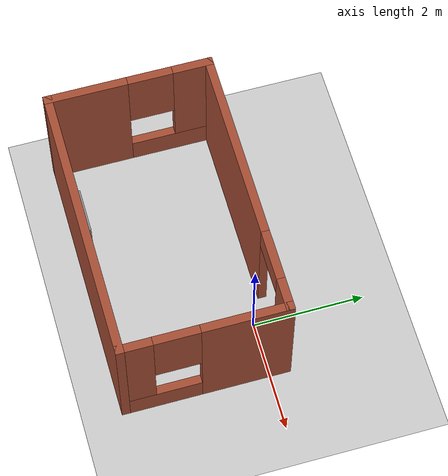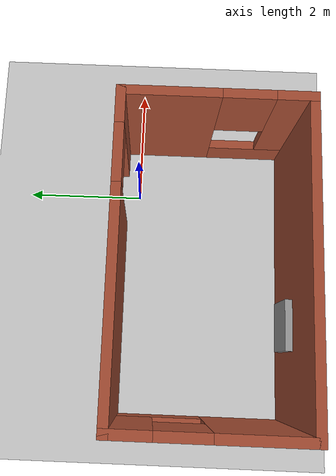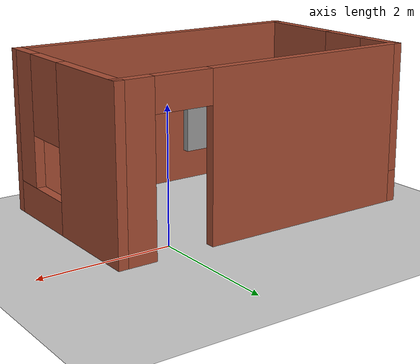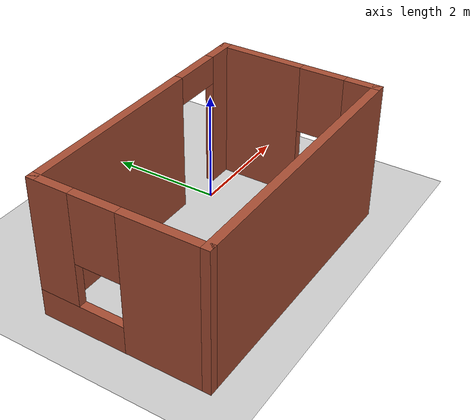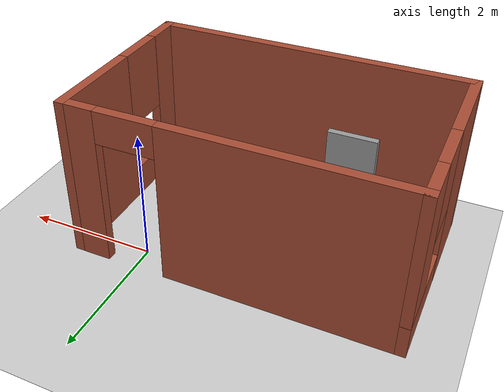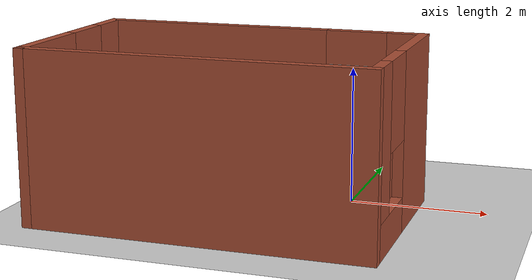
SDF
<sdf version="1.6">
 <world name="default">
  <light name="sun" type="directional">
   <pose>0 0 10 0 -0 0</pose>
   <diffuse>0.8 0.8 0.8 1</diffuse>
   <specular>0.2 0.2 0.2 1</specular>
   <attenuation>
    <range>1000</range>
    <constant>0.9</constant>
    <linear>0.01</linear>
    <quadratic>0.001</quadratic>
   </attenuation>
   <direction>-0.5 0.1 -0.9</direction>
  </light>
  <model name="ground_plane">
   <static>1</static>
   <link name="link">
    <collision name="collision">
     <geometry><plane><normal>0 0 1</normal><size>100 100</size></plane></geometry>
     <surface>
      <contact><collide_bitmask>65535</collide_bitmask></contact>
      <friction><ode><mu>100</mu><mu2>50</mu2></ode></friction>
     </surface>
    </collision>
    <visual name="visual">
     <cast_shadows>0</cast_shadows>
     <geometry><plane><normal>0 0 1</normal><size>100 100</size></plane></geometry>
     <material>
      <script><uri>file://media/materials/scripts/gazebo.material</uri><name>Gazebo/Grey</name></script>
     </material>
    </visual>
   </link>
  </model>
  <gravity>0 0 -9.8</gravity>
  <magnetic_field>6e-06 2.3e-05 -4.2e-05</magnetic_field>
  <atmosphere type="adiabatic"/>
  <physics name="default_physics" default="0" type="ode">
   <max_step_size>0.001</max_step_size>
   <real_time_factor>1</real_time_factor>
   <real_time_update_rate>1000</real_time_update_rate>
  </physics>
  <scene><ambient>0.4 0.4 0.4 1</ambient><background>0.7 0.7 0.7 1</background><shadows>1</shadows></scene>
  <spherical_coordinates>
   <surface_model>EARTH_WGS84</surface_model>
   <latitude_deg>0</latitude_deg>
   <longitude_deg>0</longitude_deg>
   <elevation>0</elevation>
   <heading_deg>0</heading_deg>
  </spherical_coordinates>
  <model name="demo">
   <pose>-1.485 -1.125 0 0 -0 0</pose>
   <link name="Wall_0">
    <collision name="Wall_0_Collision">
     <geometry><box><size>5 0.15 2.5</size></box></geometry>
     <pose>0 0 1.25 0 -0 0</pose>
    </collision>
    <visual name="Wall_0_Visual">
     <pose>0 0 1.25 0 -0 0</pose>
     <geometry><box><size>5 0.15 2.5</size></box></geometry>
     <material>
      <script><uri>file://media/materials/scripts/gazebo.material</uri><name>Gazebo/Bricks</name></script>
      <ambient>1 1 1 1</ambient>
     </material>
     <meta><layer>0</layer></meta>
    </visual>
    <pose>0 -1.425 0 0 -0 3.14159</pose>
   </link>
   <link name="Wall_3">
    <pose>-2.425 0 0 0 -0 1.5708</pose>
    <visual name="Wall_3_Visual_0">
     <pose>-0.764583 0 1.25 0 -0 0</pose>
     <geometry><box><size>1.47083 0.15 2.5</size></box></geometry>
     <material>
      <script><uri>file://media/materials/scripts/gazebo.material</uri><name>Gazebo/Bricks</name></script>
      <ambient>1 1 1 1</ambient>
     </material>
     <meta><layer>0</layer></meta>
    </visual>
    <collision name="Wall_3_Collision_0">
     <geometry><box><size>1.47083 0.15 2.5</size></box></geometry>
     <pose>-0.764583 0 1.25 0 -0 0</pose>
    </collision>
    <visual name="Wall_3_Visual_1">
     <pose>0.735417 0 0.25 0 -0 0</pose>
     <geometry><box><size>1.52917 0.15 0.5</size></box></geometry>
     <material>
      <script><uri>file://media/materials/scripts/gazebo.material</uri><name>Gazebo/Bricks</name></script>
      <ambient>1 1 1 1</ambient>
     </material>
     <meta><layer>0</layer></meta>
    </visual>
    <collision name="Wall_3_Collision_1">
     <geometry><box><size>1.52917 0.15 0.5</size></box></geometry>
     <pose>0.735417 0 0.25 0 -0 0</pose>
    </collision>
    <visual name="Wall_3_Visual_2">
     <pose>1.13542 0 1.5 0 -0 0</pose>
     <geometry><box><size>0.729167 0.15 2</size></box></geometry>
     <material>
      <script><uri>file://media/materials/scripts/gazebo.material</uri><name>Gazebo/Bricks</name></script>
      <ambient>1 1 1 1</ambient>
     </material>
     <meta><layer>0</layer></meta>
    </visual>
    <collision name="Wall_3_Collision_2">
     <geometry><box><size>0.729167 0.15 2</size></box></geometry>
     <pose>1.13542 0 1.5 0 -0 0</pose>
    </collision>
    <visual name="Wall_3_Visual_3">
     <pose>0.370833 0 1.9 0 -0 0</pose>
     <geometry><box><size>0.8 0.15 1.2</size></box></geometry>
     <material>
      <script><uri>file://media/materials/scripts/gazebo.material</uri><name>Gazebo/Bricks</name></script>
      <ambient>1 1 1 1</ambient>
     </material>
     <meta><layer>0</layer></meta>
    </visual>
    <collision name="Wall_3_Collision_3">
     <geometry><box><size>0.8 0.15 1.2</size></box></geometry>
     <pose>0.370833 0 1.9 0 -0 0</pose>
    </collision>
   </link>
   <link name="Wall_4">
    <pose>0 1.425 0 0 -0 0</pose>
    <visual name="Wall_4_Visual_0">
     <pose>-0.744961 0 1.25 0 -0 0</pose>
     <geometry><box><size>3.51008 0.15 2.5</size></box></geometry>
     <material>
      <script><uri>file://media/materials/scripts/gazebo.material</uri><name>Gazebo/Bricks</name></script>
      <ambient>1 1 1 1</ambient>
     </material>
     <meta><layer>0</layer></meta>
    </visual>
    <collision name="Wall_4_Collision_0">
     <geometry><box><size>3.51008 0.15 2.5</size></box></geometry>
     <pose>-0.744961 0 1.25 0 -0 0</pose>
    </collision>
    <visual name="Wall_4_Visual_1">
     <pose>2.20504 0 1.25 0 -0 0</pose>
     <geometry><box><size>0.589922 0.15 2.5</size></box></geometry>
     <material>
      <script><uri>file://media/materials/scripts/gazebo.material</uri><name>Gazebo/Bricks</name></script>
      <ambient>1 1 1 1</ambient>
     </material>
     <meta><layer>0</layer></meta>
    </visual>
    <collision name="Wall_4_Collision_1">
     <geometry><box><size>0.589922 0.15 2.5</size></box></geometry>
     <pose>2.20504 0 1.25 0 -0 0</pose>
    </collision>
    <visual name="Wall_4_Visual_2">
     <pose>1.46008 0 2.25 0 -0 0</pose>
     <geometry><box><size>0.9 0.15 0.5</size></box></geometry>
     <material>
      <script><uri>file://media/materials/scripts/gazebo.material</uri><name>Gazebo/Bricks</name></script>
      <ambient>1 1 1 1</ambient>
     </material>
     <meta><layer>0</layer></meta>
    </visual>
    <collision name="Wall_4_Collision_2">
     <geometry><box><size>0.9 0.15 0.5</size></box></geometry>
     <pose>1.46008 0 2.25 0 -0 0</pose>
    </collision>
   </link>
   <link name="Wall_5">
    <pose>2.425 0 0 0 0 -1.5708</pose>
    <visual name="Wall_5_Visual_0">
     <pose>-0.713271 0 1.25 0 -0 0</pose>
     <geometry><box><size>1.57346 0.15 2.5</size></box></geometry>
     <material>
      <script><uri>file://media/materials/scripts/gazebo.material</uri><name>Gazebo/Bricks</name></script>
      <ambient>1 1 1 1</ambient>
     </material>
     <meta><layer>0</layer></meta>
    </visual>
    <collision name="Wall_5_Collision_0">
     <geometry><box><size>1.57346 0.15 2.5</size></box></geometry>
     <pose>-0.713271 0 1.25 0 -0 0</pose>
    </collision>
    <visual name="Wall_5_Visual_1">
     <pose>0.786729 0 0.25 0 -0 0</pose>
     <geometry><box><size>1.42654 0.15 0.5</size></box></geometry>
     <material>
      <script><uri>file://media/materials/scripts/gazebo.material</uri><name>Gazebo/Bricks</name></script>
      <ambient>1 1 1 1</ambient>
     </material>
     <meta><layer>0</layer></meta>
    </visual>
    <collision name="Wall_5_Collision_1">
     <geometry><box><size>1.42654 0.15 0.5</size></box></geometry>
     <pose>0.786729 0 0.25 0 -0 0</pose>
    </collision>
    <visual name="Wall_5_Visual_2">
     <pose>1.18673 0 1.5 0 -0 0</pose>
     <geometry><box><size>0.626543 0.15 2</size></box></geometry>
     <material>
      <script><uri>file://media/materials/scripts/gazebo.material</uri><name>Gazebo/Bricks</name></script>
      <ambient>1 1 1 1</ambient>
     </material>
     <meta><layer>0</layer></meta>
    </visual>
    <collision name="Wall_5_Collision_2">
     <geometry><box><size>0.626543 0.15 2</size></box></geometry>
     <pose>1.18673 0 1.5 0 -0 0</pose>
    </collision>
    <visual name="Wall_5_Visual_3">
     <pose>0.473457 0 1.9 0 -0 0</pose>
     <geometry><box><size>0.8 0.15 1.2</size></box></geometry>
     <material>
      <script><uri>file://media/materials/scripts/gazebo.material</uri><name>Gazebo/Bricks</name></script>
      <ambient>1 1 1 1</ambient>
     </material>
     <meta><layer>0</layer></meta>
    </visual>
    <collision name="Wall_5_Collision_3">
     <geometry><box><size>0.8 0.15 1.2</size></box></geometry>
     <pose>0.473457 0 1.9 0 -0 0</pose>
    </collision>
   </link>
   <link name="Window_0">
    <collision name="Window_0_Collision">
     <geometry><box><size>0.8 0.17 0.8</size></box></geometry>
     <pose>0 0 0.4 0 -0 0</pose>
    </collision>
    <visual name="Window_0_Visual">
     <pose>0 0 0.4 0 -0 0</pose>
     <geometry><box><size>0.8 0.17 0.8</size></box></geometry>
     <material>
      <script><uri>file://media/materials/scripts/gazebo.material</uri><name>Gazebo/Grey</name></script>
     </material>
    </visual>
    <pose>-0.826541 -1.31775 0.5 0 -0 0</pose>
   </link>
   <static>1</static>
  </model>
 </world>
</sdf>
